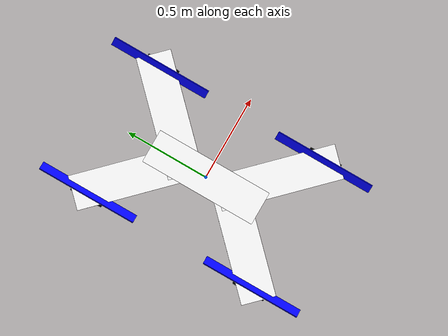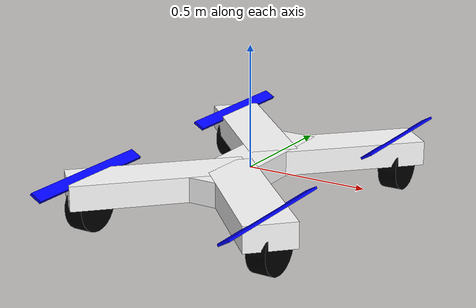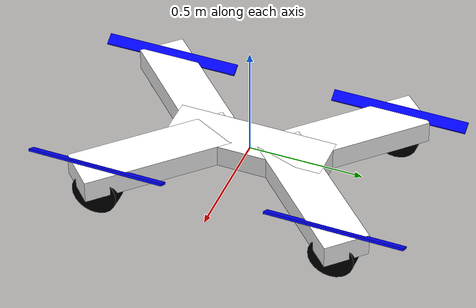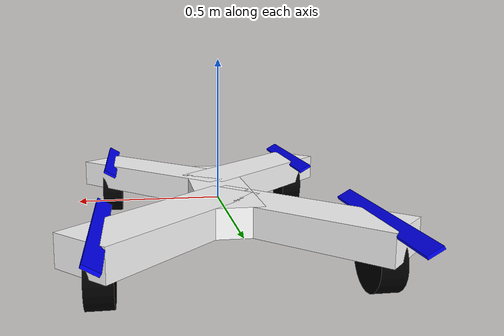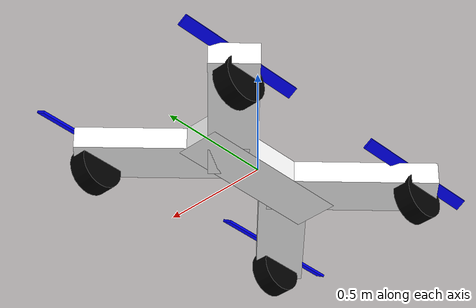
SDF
<sdf version='1.9'>
  <model name='physics'>
    <link name='base_link'>
      <inertial>
        <pose>0 0 0 0 0 0</pose>
        <mass>2.3999999999999999</mass>
        <inertia>
          <ixx>5.0489999999999986</ixx>
          <ixy>0</ixy>
          <ixz>0</ixz>
          <iyy>5.016</iyy>
          <iyz>0</iyz>
          <izz>5.0650000000000013</izz>
        </inertia>
      </inertial>
      <collision name='base_link_collision'>
        <pose>0 0 0 0 0 0</pose>
        <geometry>
          <box>
            <size>0.20000000000000001 0.69999999999999996 0.10000000000000001</size>
          </box>
        </geometry>
      </collision>
      <collision name='base_link_fixed_joint_lump__wing_backward_left_collision_1'>
        <pose>0.20000000000000001 -0.34999999999999998 0 0 0 0</pose>
        <geometry>
          <box>
            <size>0.20000000000000001 0.69999999999999996 0.10000000000000001</size>
          </box>
        </geometry>
      </collision>
      <collision name='base_link_fixed_joint_lump__wing_backward_right_collision_2'>
        <pose>-0.20000000000000001 -0.34999999999999998 0 0 0 0</pose>
        <geometry>
          <box>
            <size>0.20000000000000001 0.69999999999999996 0.10000000000000001</size>
          </box>
        </geometry>
      </collision>
      <collision name='base_link_fixed_joint_lump__wing_forward_left_collision_3'>
        <pose>0.20000000000000001 0.34999999999999998 0 0 0 0</pose>
        <geometry>
          <box>
            <size>0.20000000000000001 0.69999999999999996 0.10000000000000001</size>
          </box>
        </geometry>
      </collision>
      <collision name='base_link_fixed_joint_lump__wing_forward_right_collision_4'>
        <pose>-0.20000000000000001 0.34999999999999998 0 0 0 0</pose>
        <geometry>
          <box>
            <size>0.20000000000000001 0.69999999999999996 0.10000000000000001</size>
          </box>
        </geometry>
      </collision>
      <visual name='base_link_visual'>
        <pose>0 0 0 0 0 0</pose>
        <geometry>
          <box>
            <size>0.20000000000000001 0.69999999999999996 0.10000000000000001</size>
          </box>
        </geometry>
        <material>
          <diffuse>1 1 1 1</diffuse>
          <ambient>1 1 1 1</ambient>
        </material>
      </visual>
      <visual name='base_link_fixed_joint_lump__wing_backward_left_visual_1'>
        <pose>0.20000000000000001 -0.34999999999999998 0 0 0 -2.358185307179586</pose>
        <geometry>
          <box>
            <size>0.20000000000000001 0.69999999999999996 0.10000000000000001</size>
          </box>
        </geometry>
        <material>
          <diffuse>1 1 1 1</diffuse>
          <ambient>1 1 1 1</ambient>
        </material>
      </visual>
      <visual name='base_link_fixed_joint_lump__wing_backward_right_visual_2'>
        <pose>-0.20000000000000001 -0.34999999999999998 0 0 0 2.355</pose>
        <geometry>
          <box>
            <size>0.20000000000000001 0.69999999999999996 0.10000000000000001</size>
          </box>
        </geometry>
        <material>
          <diffuse>1 1 1 1</diffuse>
          <ambient>1 1 1 1</ambient>
        </material>
      </visual>
      <visual name='base_link_fixed_joint_lump__wing_forward_left_visual_3'>
        <pose>0.20000000000000001 0.34999999999999998 0 0 0 -0.78818530717958624</pose>
        <geometry>
          <box>
            <size>0.20000000000000001 0.69999999999999996 0.10000000000000001</size>
          </box>
        </geometry>
        <material>
          <diffuse>1 1 1 1</diffuse>
          <ambient>1 1 1 1</ambient>
        </material>
      </visual>
      <visual name='base_link_fixed_joint_lump__wing_forward_right_visual_4'>
        <pose>-0.20000000000000001 0.34999999999999998 0 0 0 0.78500000000000025</pose>
        <geometry>
          <box>
            <size>0.20000000000000001 0.69999999999999996 0.10000000000000001</size>
          </box>
        </geometry>
        <material>
          <diffuse>1 1 1 1</diffuse>
          <ambient>1 1 1 1</ambient>
        </material>
      </visual>
    </link>
    <joint name='propeller_backward_left_joint' type='revolute'>
      <pose relative_to='base_link'>0.40000000000000002 -0.52499999999999991 0.050000000000000003 0 0 0</pose>
      <parent>base_link</parent>
      <child>propeller_backward_left</child>
      <axis>
        <xyz>0 0 1</xyz>
        <limit>
          <lower>-inf</lower>
          <upper>inf</upper>
        </limit>
        <dynamics>
          <spring_reference>0</spring_reference>
          <spring_stiffness>0</spring_stiffness>
        </dynamics>
      </axis>
    </joint>
    <link name='propeller_backward_left'>
      <pose relative_to='propeller_backward_left_joint'>0 0 0 0 0 0</pose>
      <inertial>
        <pose>0 0 0 0 0 0</pose>
        <mass>0.01</mass>
        <inertia>
          <ixx>1</ixx>
          <ixy>0</ixy>
          <ixz>0</ixz>
          <iyy>1</iyy>
          <iyz>0</iyz>
          <izz>1</izz>
        </inertia>
      </inertial>
      <collision name='propeller_backward_left_collision'>
        <pose>0 0 0 0 0 0</pose>
        <geometry>
          <box>
            <size>0.050000000000000003 0.59999999999999998 0.01</size>
          </box>
        </geometry>
      </collision>
      <visual name='propeller_backward_left_visual'>
        <pose>0 0 0 3.1415926535897931 0.52492598692312675 3.1415926535897931</pose>
        <geometry>
          <box>
            <size>0.050000000000000003 0.59999999999999998 0.01</size>
          </box>
        </geometry>
        <material>
          <diffuse>0 0 1 1</diffuse>
          <ambient>0 0 1 1</ambient>
        </material>
      </visual>
    </link>
    <joint name='wheel_backward_left_joint' type='revolute'>
      <pose relative_to='base_link'>0.40000000000000002 -0.52499999999999991 -0.070000000000000007 0 0 0</pose>
      <parent>base_link</parent>
      <child>wheel_backward_left</child>
      <axis>
        <xyz>0 0 1</xyz>
        <limit>
          <lower>-inf</lower>
          <upper>inf</upper>
        </limit>
        <dynamics>
          <spring_reference>0</spring_reference>
          <spring_stiffness>0</spring_stiffness>
        </dynamics>
      </axis>
    </joint>
    <link name='wheel_backward_left'>
      <pose relative_to='wheel_backward_left_joint'>0 0 0 0 0 0</pose>
      <inertial>
        <pose>0 0 0 0 0 0</pose>
        <mass>0.01</mass>
        <inertia>
          <ixx>1</ixx>
          <ixy>0</ixy>
          <ixz>0</ixz>
          <iyy>1</iyy>
          <iyz>0</iyz>
          <izz>1</izz>
        </inertia>
      </inertial>
      <collision name='wheel_backward_left_collision'>
        <pose>0 0 0 0 0 0</pose>
        <geometry>
          <cylinder>
            <length>0.080000000000000002</length>
            <radius>0.10000000000000001</radius>
          </cylinder>
        </geometry>
      </collision>
      <visual name='wheel_backward_left_visual'>
        <pose>0 0 0 0 1.5707963267948966 0</pose>
        <geometry>
          <cylinder>
            <length>0.080000000000000002</length>
            <radius>0.10000000000000001</radius>
          </cylinder>
        </geometry>
        <material>
          <diffuse>0 0 0 1</diffuse>
          <ambient>0 0 0 1</ambient>
        </material>
      </visual>
    </link>
    <joint name='propeller_backward_right_joint' type='revolute'>
      <pose relative_to='base_link'>-0.40000000000000002 -0.52499999999999991 0.050000000000000003 0 0 0</pose>
      <parent>base_link</parent>
      <child>propeller_backward_right</child>
      <axis>
        <xyz>0 0 1</xyz>
        <limit>
          <lower>-inf</lower>
          <upper>inf</upper>
        </limit>
        <dynamics>
          <spring_reference>0</spring_reference>
          <spring_stiffness>0</spring_stiffness>
        </dynamics>
      </axis>
    </joint>
    <link name='propeller_backward_right'>
      <pose relative_to='propeller_backward_right_joint'>0 0 0 0 0 0</pose>
      <inertial>
        <pose>0 0 0 0 0 0</pose>
        <mass>0.01</mass>
        <inertia>
          <ixx>1</ixx>
          <ixy>0</ixy>
          <ixz>0</ixz>
          <iyy>1</iyy>
          <iyz>0</iyz>
          <izz>1</izz>
        </inertia>
      </inertial>
      <collision name='propeller_backward_right_collision'>
        <pose>0 0 0 0 0 0</pose>
        <geometry>
          <box>
            <size>0.050000000000000003 0.59999999999999998 0.01</size>
          </box>
        </geometry>
      </collision>
      <visual name='propeller_backward_right_visual'>
        <pose>0 0 0 0 0.52333333333333332 0</pose>
        <geometry>
          <box>
            <size>0.050000000000000003 0.59999999999999998 0.01</size>
          </box>
        </geometry>
        <material>
          <diffuse>0 0 1 1</diffuse>
          <ambient>0 0 1 1</ambient>
        </material>
      </visual>
    </link>
    <joint name='wheel_backward_right_joint' type='revolute'>
      <pose relative_to='base_link'>-0.40000000000000002 -0.52499999999999991 -0.070000000000000007 0 0 0</pose>
      <parent>base_link</parent>
      <child>wheel_backward_right</child>
      <axis>
        <xyz>0 0 1</xyz>
        <limit>
          <lower>-inf</lower>
          <upper>inf</upper>
        </limit>
        <dynamics>
          <spring_reference>0</spring_reference>
          <spring_stiffness>0</spring_stiffness>
        </dynamics>
      </axis>
    </joint>
    <link name='wheel_backward_right'>
      <pose relative_to='wheel_backward_right_joint'>0 0 0 0 0 0</pose>
      <inertial>
        <pose>0 0 0 0 0 0</pose>
        <mass>0.01</mass>
        <inertia>
          <ixx>1</ixx>
          <ixy>0</ixy>
          <ixz>0</ixz>
          <iyy>1</iyy>
          <iyz>0</iyz>
          <izz>1</izz>
        </inertia>
      </inertial>
      <collision name='wheel_backward_right_collision'>
        <pose>0 0 0 0 0 0</pose>
        <geometry>
          <cylinder>
            <length>0.080000000000000002</length>
            <radius>0.10000000000000001</radius>
          </cylinder>
        </geometry>
      </collision>
      <visual name='wheel_backward_right_visual'>
        <pose>0 0 0 0 1.5707963267948966 0</pose>
        <geometry>
          <cylinder>
            <length>0.080000000000000002</length>
            <radius>0.10000000000000001</radius>
          </cylinder>
        </geometry>
        <material>
          <diffuse>0 0 0 1</diffuse>
          <ambient>0 0 0 1</ambient>
        </material>
      </visual>
    </link>
    <joint name='propeller_forward_left_joint' type='revolute'>
      <pose relative_to='base_link'>0.40000000000000002 0.52499999999999991 0.050000000000000003 0 0 0</pose>
      <parent>base_link</parent>
      <child>propeller_forward_left</child>
      <axis>
        <xyz>0 0 1</xyz>
        <limit>
          <lower>-inf</lower>
          <upper>inf</upper>
        </limit>
        <dynamics>
          <spring_reference>0</spring_reference>
          <spring_stiffness>0</spring_stiffness>
        </dynamics>
      </axis>
    </joint>
    <link name='propeller_forward_left'>
      <pose relative_to='propeller_forward_left_joint'>0 0 0 0 0 0</pose>
      <inertial>
        <pose>0 0 0 0 0 0</pose>
        <mass>0.01</mass>
        <inertia>
          <ixx>1</ixx>
          <ixy>0</ixy>
          <ixz>0</ixz>
          <iyy>1</iyy>
          <iyz>0</iyz>
          <izz>1</izz>
        </inertia>
      </inertial>
      <collision name='propeller_forward_left_collision'>
        <pose>0 0 0 0 0 0</pose>
        <geometry>
          <box>
            <size>0.050000000000000003 0.59999999999999998 0.01</size>
          </box>
        </geometry>
      </collision>
      <visual name='propeller_forward_left_visual'>
        <pose>0 0 0 3.1415926535897931 0.52492598692312675 3.1415926535897931</pose>
        <geometry>
          <box>
            <size>0.050000000000000003 0.59999999999999998 0.01</size>
          </box>
        </geometry>
        <material>
          <diffuse>0 0 1 1</diffuse>
          <ambient>0 0 1 1</ambient>
        </material>
      </visual>
    </link>
    <joint name='wheel_forward_left_joint' type='revolute'>
      <pose relative_to='base_link'>0.40000000000000002 0.52499999999999991 -0.070000000000000007 0 0 0</pose>
      <parent>base_link</parent>
      <child>wheel_forward_left</child>
      <axis>
        <xyz>0 0 1</xyz>
        <limit>
          <lower>-inf</lower>
          <upper>inf</upper>
        </limit>
        <dynamics>
          <spring_reference>0</spring_reference>
          <spring_stiffness>0</spring_stiffness>
        </dynamics>
      </axis>
    </joint>
    <link name='wheel_forward_left'>
      <pose relative_to='wheel_forward_left_joint'>0 0 0 0 0 0</pose>
      <inertial>
        <pose>0 0 0 0 0 0</pose>
        <mass>0.01</mass>
        <inertia>
          <ixx>1</ixx>
          <ixy>0</ixy>
          <ixz>0</ixz>
          <iyy>1</iyy>
          <iyz>0</iyz>
          <izz>1</izz>
        </inertia>
      </inertial>
      <collision name='wheel_forward_left_collision'>
        <pose>0 0 0 0 0 0</pose>
        <geometry>
          <cylinder>
            <length>0.080000000000000002</length>
            <radius>0.10000000000000001</radius>
          </cylinder>
        </geometry>
      </collision>
      <visual name='wheel_forward_left_visual'>
        <pose>0 0 0 0 1.5707963267948966 0</pose>
        <geometry>
          <cylinder>
            <length>0.080000000000000002</length>
            <radius>0.10000000000000001</radius>
          </cylinder>
        </geometry>
        <material>
          <diffuse>0 0 0 1</diffuse>
          <ambient>0 0 0 1</ambient>
        </material>
      </visual>
    </link>
    <joint name='propeller_forward_right_joint' type='revolute'>
      <pose relative_to='base_link'>-0.40000000000000002 0.52499999999999991 0.050000000000000003 0 0 0</pose>
      <parent>base_link</parent>
      <child>propeller_forward_right</child>
      <axis>
        <xyz>0 0 1</xyz>
        <limit>
          <lower>-inf</lower>
          <upper>inf</upper>
        </limit>
        <dynamics>
          <spring_reference>0</spring_reference>
          <spring_stiffness>0</spring_stiffness>
        </dynamics>
      </axis>
    </joint>
    <link name='propeller_forward_right'>
      <pose relative_to='propeller_forward_right_joint'>0 0 0 0 0 0</pose>
      <inertial>
        <pose>0 0 0 0 0 0</pose>
        <mass>0.01</mass>
        <inertia>
          <ixx>1</ixx>
          <ixy>0</ixy>
          <ixz>0</ixz>
          <iyy>1</iyy>
          <iyz>0</iyz>
          <izz>1</izz>
        </inertia>
      </inertial>
      <collision name='propeller_forward_right_collision'>
        <pose>0 0 0 0 0 0</pose>
        <geometry>
          <box>
            <size>0.050000000000000003 0.59999999999999998 0.01</size>
          </box>
        </geometry>
      </collision>
      <visual name='propeller_forward_right_visual'>
        <pose>0 0 0 0 0.52333333333333332 0</pose>
        <geometry>
          <box>
            <size>0.050000000000000003 0.59999999999999998 0.01</size>
          </box>
        </geometry>
        <material>
          <diffuse>0 0 1 1</diffuse>
          <ambient>0 0 1 1</ambient>
        </material>
      </visual>
    </link>
    <joint name='wheel_forward_right_joint' type='revolute'>
      <pose relative_to='base_link'>-0.40000000000000002 0.52499999999999991 -0.070000000000000007 0 0 0</pose>
      <parent>base_link</parent>
      <child>wheel_forward_right</child>
      <axis>
        <xyz>0 0 1</xyz>
        <limit>
          <lower>-inf</lower>
          <upper>inf</upper>
        </limit>
        <dynamics>
          <spring_reference>0</spring_reference>
          <spring_stiffness>0</spring_stiffness>
        </dynamics>
      </axis>
    </joint>
    <link name='wheel_forward_right'>
      <pose relative_to='wheel_forward_right_joint'>0 0 0 0 0 0</pose>
      <inertial>
        <pose>0 0 0 0 0 0</pose>
        <mass>0.01</mass>
        <inertia>
          <ixx>1</ixx>
          <ixy>0</ixy>
          <ixz>0</ixz>
          <iyy>1</iyy>
          <iyz>0</iyz>
          <izz>1</izz>
        </inertia>
      </inertial>
      <collision name='wheel_forward_right_collision'>
        <pose>0 0 0 0 0 0</pose>
        <geometry>
          <cylinder>
            <length>0.080000000000000002</length>
            <radius>0.10000000000000001</radius>
          </cylinder>
        </geometry>
      </collision>
      <visual name='wheel_forward_right_visual'>
        <pose>0 0 0 0 1.5707963267948966 0</pose>
        <geometry>
          <cylinder>
            <length>0.080000000000000002</length>
            <radius>0.10000000000000001</radius>
          </cylinder>
        </geometry>
        <material>
          <diffuse>0 0 0 1</diffuse>
          <ambient>0 0 0 1</ambient>
        </material>
      </visual>
    </link>
    <frame name='wing_backward_left_joint' attached_to='base_link'>
      <pose>0.20000000000000001 -0.34999999999999998 0 0 0 0</pose>
    </frame>
    <frame name='wing_backward_left' attached_to='wing_backward_left_joint'>
      <pose>0 0 0 0 0 0</pose>
    </frame>
    <frame name='wing_backward_right_joint' attached_to='base_link'>
      <pose>-0.20000000000000001 -0.34999999999999998 0 0 0 0</pose>
    </frame>
    <frame name='wing_backward_right' attached_to='wing_backward_right_joint'>
      <pose>0 0 0 0 0 0</pose>
    </frame>
    <frame name='wing_forward_left_joint' attached_to='base_link'>
      <pose>0.20000000000000001 0.34999999999999998 0 0 0 0</pose>
    </frame>
    <frame name='wing_forward_left' attached_to='wing_forward_left_joint'>
      <pose>0 0 0 0 0 0</pose>
    </frame>
    <frame name='wing_forward_right_joint' attached_to='base_link'>
      <pose>-0.20000000000000001 0.34999999999999998 0 0 0 0</pose>
    </frame>
    <frame name='wing_forward_right' attached_to='wing_forward_right_joint'>
      <pose>0 0 0 0 0 0</pose>
    </frame>
  </model>
</sdf>
